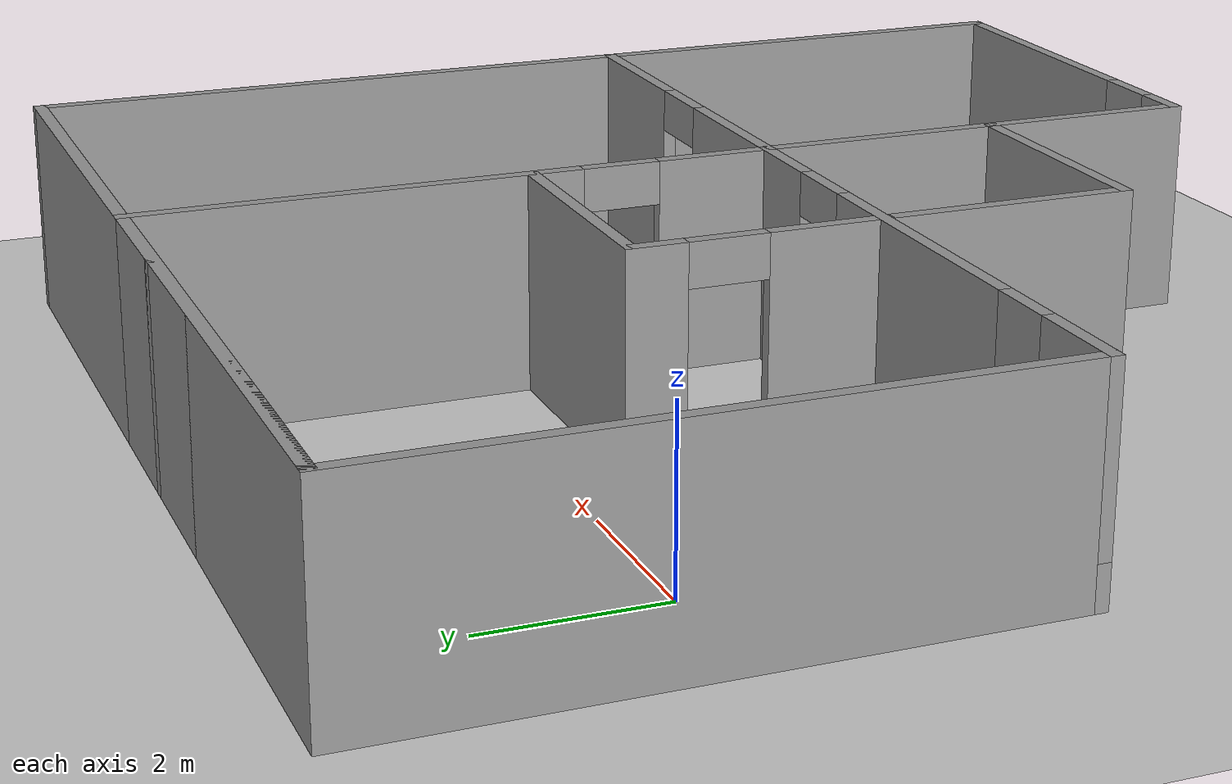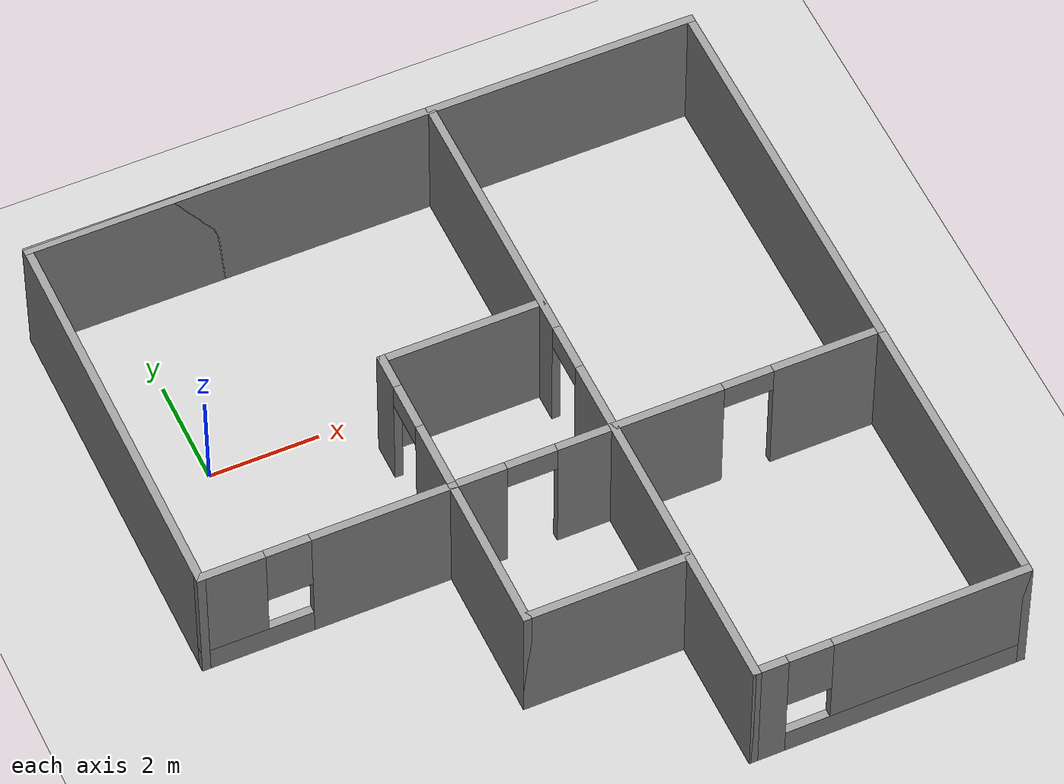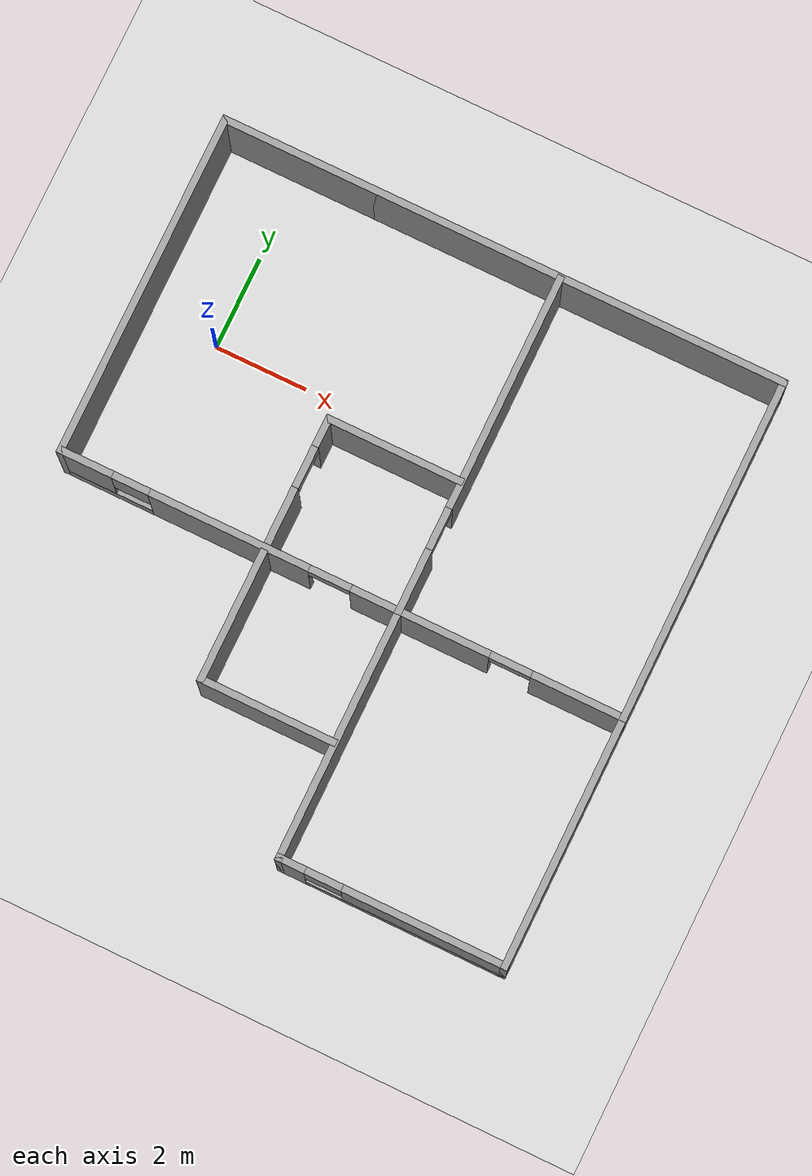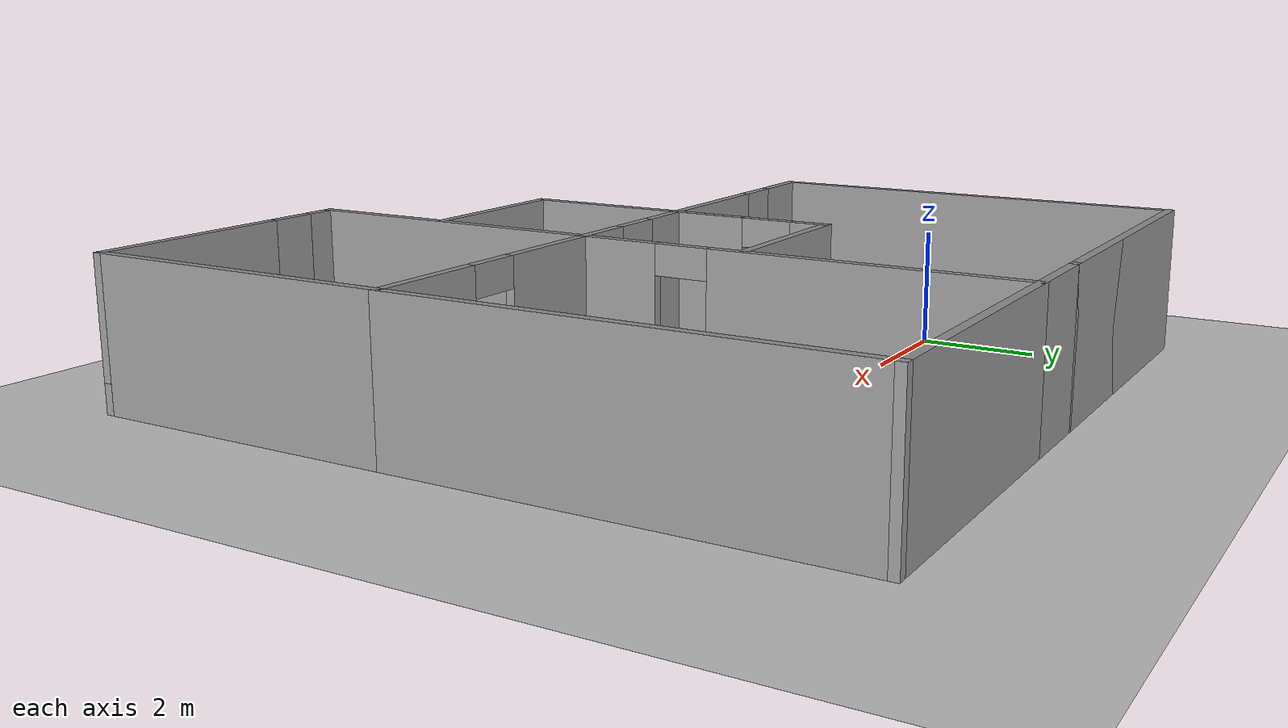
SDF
<sdf version="1.6">
 <world name="default">
  <model name="ground_plane">
   <static>1</static>
   <link name="link">
    <collision name="collision">
     <geometry><plane><normal>0 0 1</normal><size>100 100</size></plane></geometry>
     <surface>
      <contact><collide_bitmask>65535</collide_bitmask></contact>
      <friction><ode><mu>100</mu><mu2>50</mu2></ode></friction>
     </surface>
    </collision>
    <visual name="visual">
     <cast_shadows>0</cast_shadows>
     <geometry><plane><normal>0 0 1</normal><size>100 100</size></plane></geometry>
     <material>
      <script><uri>file://media/materials/scripts/gazebo.material</uri><name>Gazebo/Grey</name></script>
     </material>
    </visual>
   </link>
  </model>
  <model name="HouseIslam_0">
   <pose>4.53455 -2.52529 0 0 -0 0</pose>
   <link name="Wall_11">
    <collision name="Wall_11_Collision">
     <geometry><box><size>7.5 0.15 2.5</size></box></geometry>
     <pose>0 0 1.25 0 -0 0</pose>
    </collision>
    <visual name="Wall_11_Visual">
     <pose>0 0 1.25 0 -0 0</pose>
     <geometry><box><size>7.5 0.15 2.5</size></box></geometry>
     <material>
      <script><uri>file://media/materials/scripts/gazebo.material</uri><name>Gazebo/Grey</name></script>
      <ambient>1 1 1 1</ambient>
     </material>
     <meta><layer>0</layer></meta>
    </visual>
    <pose>-6.1 2.675 0 0 -0 1.5708</pose>
   </link>
   <link name="Wall_13">
    <pose>3.675 -1 0 0 -0 0</pose>
    <visual name="Wall_13_Visual_0">
     <pose>-1.4775 0 1.25 0 -0 0</pose>
     <geometry><box><size>2.045 0.15 2.5</size></box></geometry>
     <material>
      <script><uri>file://media/materials/scripts/gazebo.material</uri><name>Gazebo/Grey</name></script>
      <ambient>1 1 1 1</ambient>
     </material>
     <meta><layer>0</layer></meta>
    </visual>
    <collision name="Wall_13_Collision_0">
     <geometry><box><size>2.045 0.15 2.5</size></box></geometry>
     <pose>-1.4775 0 1.25 0 -0 0</pose>
    </collision>
    <visual name="Wall_13_Visual_1">
     <pose>1.4725 0 1.25 0 -0 0</pose>
     <geometry><box><size>2.055 0.15 2.5</size></box></geometry>
     <material>
      <script><uri>file://media/materials/scripts/gazebo.material</uri><name>Gazebo/Grey</name></script>
      <ambient>1 1 1 1</ambient>
     </material>
     <meta><layer>0</layer></meta>
    </visual>
    <collision name="Wall_13_Collision_1">
     <geometry><box><size>2.055 0.15 2.5</size></box></geometry>
     <pose>1.4725 0 1.25 0 -0 0</pose>
    </collision>
    <visual name="Wall_13_Visual_2">
     <pose>-0.005 0 2.25 0 -0 0</pose>
     <geometry><box><size>0.9 0.15 0.5</size></box></geometry>
     <material>
      <script><uri>file://media/materials/scripts/gazebo.material</uri><name>Gazebo/Grey</name></script>
      <ambient>1 1 1 1</ambient>
     </material>
     <meta><layer>0</layer></meta>
    </visual>
    <collision name="Wall_13_Collision_2">
     <geometry><box><size>0.9 0.15 0.5</size></box></geometry>
     <pose>-0.005 0 2.25 0 -0 0</pose>
    </collision>
   </link>
   <link name="Wall_15">
    <collision name="Wall_15_Collision">
     <geometry><box><size>7.5 0.15 2.5</size></box></geometry>
     <pose>0 0 1.25 0 -0 0</pose>
    </collision>
    <visual name="Wall_15_Visual">
     <pose>0 0 1.25 0 -0 0</pose>
     <geometry><box><size>7.5 0.15 2.5</size></box></geometry>
     <material>
      <script><uri>file://media/materials/scripts/gazebo.material</uri><name>Gazebo/Grey</name></script>
      <ambient>1 1 1 1</ambient>
     </material>
     <meta><layer>0</layer></meta>
    </visual>
    <pose>6.1 2.675 0 0 -0 1.5708</pose>
   </link>
   <link name="Wall_17">
    <collision name="Wall_17_Collision">
     <geometry><box><size>5 0.15 2.5</size></box></geometry>
     <pose>0 0 1.25 0 -0 0</pose>
    </collision>
    <visual name="Wall_17_Visual">
     <pose>0 0 1.25 0 -0 0</pose>
     <geometry><box><size>5 0.15 2.5</size></box></geometry>
     <material>
      <script><uri>file://media/materials/scripts/gazebo.material</uri><name>Gazebo/Grey</name></script>
      <ambient>1 1 1 1</ambient>
     </material>
     <meta><layer>0</layer></meta>
    </visual>
    <pose>3.675 6.35 0 0 -0 3.14159</pose>
   </link>
   <link name="Wall_19">
    <collision name="Wall_19_Collision">
     <geometry><box><size>5.5 0.15 2.5</size></box></geometry>
     <pose>0 0 1.25 0 -0 0</pose>
    </collision>
    <visual name="Wall_19_Visual">
     <pose>0 0 1.25 0 -0 0</pose>
     <geometry><box><size>5.5 0.15 2.5</size></box></geometry>
     <material>
      <script><uri>file://media/materials/scripts/gazebo.material</uri><name>Gazebo/Grey</name></script>
      <ambient>1 1 1 1</ambient>
     </material>
     <meta><layer>0</layer></meta>
    </visual>
    <pose>1.25 -3.675 0 0 -0 -1.5708</pose>
   </link>
   <link name="Wall_21">
    <collision name="Wall_21_Collision">
     <geometry><box><size>5.5 0.15 2.5</size></box></geometry>
     <pose>0 0 1.25 0 -0 0</pose>
    </collision>
    <visual name="Wall_21_Visual">
     <pose>0 0 1.25 0 -0 0</pose>
     <geometry><box><size>5.5 0.15 2.5</size></box></geometry>
     <material>
      <script><uri>file://media/materials/scripts/gazebo.material</uri><name>Gazebo/Grey</name></script>
      <ambient>1 1 1 1</ambient>
     </material>
     <meta><layer>0</layer></meta>
    </visual>
    <pose>6.1 -3.675 0 0 -0 -1.5708</pose>
   </link>
   <link name="Wall_23">
    <pose>3.675 -6.35 0 0 -0 0</pose>
    <visual name="Wall_23_Visual_0">
     <pose>-2.1825 0 1.25 0 -0 0</pose>
     <geometry><box><size>0.635 0.15 2.5</size></box></geometry>
     <material>
      <script><uri>file://media/materials/scripts/gazebo.material</uri><name>Gazebo/Grey</name></script>
      <ambient>1 1 1 1</ambient>
     </material>
     <meta><layer>0</layer></meta>
    </visual>
    <collision name="Wall_23_Collision_0">
     <geometry><box><size>0.635 0.15 2.5</size></box></geometry>
     <pose>-2.1825 0 1.25 0 -0 0</pose>
    </collision>
    <visual name="Wall_23_Visual_1">
     <pose>0.3175 0 0.25 0 -0 0</pose>
     <geometry><box><size>4.365 0.15 0.5</size></box></geometry>
     <material>
      <script><uri>file://media/materials/scripts/gazebo.material</uri><name>Gazebo/Grey</name></script>
      <ambient>1 1 1 1</ambient>
     </material>
     <meta><layer>0</layer></meta>
    </visual>
    <collision name="Wall_23_Collision_1">
     <geometry><box><size>4.365 0.15 0.5</size></box></geometry>
     <pose>0.3175 0 0.25 0 -0 0</pose>
    </collision>
    <visual name="Wall_23_Visual_2">
     <pose>0.7175 0 1.5 0 -0 0</pose>
     <geometry><box><size>3.565 0.15 2</size></box></geometry>
     <material>
      <script><uri>file://media/materials/scripts/gazebo.material</uri><name>Gazebo/Grey</name></script>
      <ambient>1 1 1 1</ambient>
     </material>
     <meta><layer>0</layer></meta>
    </visual>
    <collision name="Wall_23_Collision_2">
     <geometry><box><size>3.565 0.15 2</size></box></geometry>
     <pose>0.7175 0 1.5 0 -0 0</pose>
    </collision>
    <visual name="Wall_23_Visual_3">
     <pose>-1.465 0 1.9 0 -0 0</pose>
     <geometry><box><size>0.8 0.15 1.2</size></box></geometry>
     <material>
      <script><uri>file://media/materials/scripts/gazebo.material</uri><name>Gazebo/Grey</name></script>
      <ambient>1 1 1 1</ambient>
     </material>
     <meta><layer>0</layer></meta>
    </visual>
    <collision name="Wall_23_Collision_3">
     <geometry><box><size>0.8 0.15 1.2</size></box></geometry>
     <pose>-1.465 0 1.9 0 -0 0</pose>
    </collision>
   </link>
   <link name="Wall_28">
    <pose>-1.64 0.404999 0 0 -0 1.5708</pose>
    <visual name="Wall_28_Visual_0">
     <pose>-0.7925 0 1.25 0 -0 0</pose>
     <geometry><box><size>1.415 0.15 2.5</size></box></geometry>
     <material>
      <script><uri>file://media/materials/scripts/gazebo.material</uri><name>Gazebo/Grey</name></script>
      <ambient>1 1 1 1</ambient>
     </material>
     <meta><layer>0</layer></meta>
    </visual>
    <collision name="Wall_28_Collision_0">
     <geometry><box><size>1.415 0.15 2.5</size></box></geometry>
     <pose>-0.7925 0 1.25 0 -0 0</pose>
    </collision>
    <visual name="Wall_28_Visual_1">
     <pose>1.1575 0 1.25 0 -0 0</pose>
     <geometry><box><size>0.685 0.15 2.5</size></box></geometry>
     <material>
      <script><uri>file://media/materials/scripts/gazebo.material</uri><name>Gazebo/Grey</name></script>
      <ambient>1 1 1 1</ambient>
     </material>
     <meta><layer>0</layer></meta>
    </visual>
    <collision name="Wall_28_Collision_1">
     <geometry><box><size>0.685 0.15 2.5</size></box></geometry>
     <pose>1.1575 0 1.25 0 -0 0</pose>
    </collision>
    <visual name="Wall_28_Visual_2">
     <pose>0.365 0 2.25 0 -0 0</pose>
     <geometry><box><size>0.9 0.15 0.5</size></box></geometry>
     <material>
      <script><uri>file://media/materials/scripts/gazebo.material</uri><name>Gazebo/Grey</name></script>
      <ambient>1 1 1 1</ambient>
     </material>
     <meta><layer>0</layer></meta>
    </visual>
    <collision name="Wall_28_Collision_2">
     <geometry><box><size>0.9 0.15 0.5</size></box></geometry>
     <pose>0.365 0 2.25 0 -0 0</pose>
    </collision>
   </link>
   <link name="Wall_3">
    <collision name="Wall_3_Collision">
     <geometry><box><size>7.5 0.15 2.5</size></box></geometry>
     <pose>0 0 1.25 0 -0 0</pose>
    </collision>
    <visual name="Wall_3_Visual">
     <pose>0 0 1.25 0 -0 0</pose>
     <geometry><box><size>7.5 0.15 2.5</size></box></geometry>
     <material>
      <script><uri>file://media/materials/scripts/gazebo.material</uri><name>Gazebo/Grey</name></script>
      <ambient>1 1 1 1</ambient>
     </material>
     <meta><layer>0</layer></meta>
    </visual>
    <pose>-2.425 6.35 0 0 -0 3.14159</pose>
   </link>
   <link name="Wall_30">
    <collision name="Wall_30_Collision">
     <geometry><box><size>3 0.15 2.5</size></box></geometry>
     <pose>0 0 1.25 0 -0 0</pose>
    </collision>
    <visual name="Wall_30_Visual">
     <pose>0 0 1.25 0 -0 0</pose>
     <geometry><box><size>3 0.15 2.5</size></box></geometry>
     <material>
      <script><uri>file://media/materials/scripts/gazebo.material</uri><name>Gazebo/Grey</name></script>
      <ambient>1 1 1 1</ambient>
     </material>
     <meta><layer>0</layer></meta>
    </visual>
    <pose>-0.215 1.83 0 0 -0 0</pose>
   </link>
   <link name="Wall_32">
    <collision name="Wall_32_Collision">
     <geometry><box><size>3 0.15 2.5</size></box></geometry>
     <pose>0 0 1.25 0 -0 0</pose>
    </collision>
    <visual name="Wall_32_Visual">
     <pose>0 0 1.25 0 -0 0</pose>
     <geometry><box><size>3 0.15 2.5</size></box></geometry>
     <material>
      <script><uri>file://media/materials/scripts/gazebo.material</uri><name>Gazebo/Grey</name></script>
      <ambient>1 1 1 1</ambient>
     </material>
     <meta><layer>0</layer></meta>
    </visual>
    <pose>-1.64 -2.445 0 0 -0 -1.5708</pose>
   </link>
   <link name="Wall_33">
    <collision name="Wall_33_Collision">
     <geometry><box><size>3 0.15 2.5</size></box></geometry>
     <pose>0 0 1.25 0 -0 0</pose>
    </collision>
    <visual name="Wall_33_Visual">
     <pose>0 0 1.25 0 -0 0</pose>
     <geometry><box><size>3 0.15 2.5</size></box></geometry>
     <material>
      <script><uri>file://media/materials/scripts/gazebo.material</uri><name>Gazebo/Grey</name></script>
      <ambient>1 1 1 1</ambient>
     </material>
     <meta><layer>0</layer></meta>
    </visual>
    <pose>-0.215 -3.87 0 0 -0 0</pose>
   </link>
   <link name="Wall_4">
    <collision name="Wall_4_Collision">
     <geometry><box><size>5.91 0.15 2.5</size></box></geometry>
     <pose>0 0 1.25 0 -0 0</pose>
    </collision>
    <visual name="Wall_4_Visual">
     <pose>0 0 1.25 0 -0 0</pose>
     <geometry><box><size>5.91 0.15 2.5</size></box></geometry>
     <material>
      <script><uri>file://media/materials/scripts/gazebo.material</uri><name>Gazebo/Grey</name></script>
      <ambient>1 1 1 1</ambient>
     </material>
     <meta><layer>0</layer></meta>
    </visual>
    <pose>-3.22 6.35 0 0 -0 0</pose>
   </link>
   <link name="Wall_5">
    <collision name="Wall_5_Collision">
     <geometry><box><size>0.16 0.15 2.5</size></box></geometry>
     <pose>0 0 1.25 0 -0 0</pose>
    </collision>
    <visual name="Wall_5_Visual">
     <pose>0 0 1.25 0 -0 0</pose>
     <geometry><box><size>0.16 0.15 2.5</size></box></geometry>
     <material>
      <script><uri>file://media/materials/scripts/gazebo.material</uri><name>Gazebo/Grey</name></script>
      <ambient>1 1 1 1</ambient>
     </material>
     <meta><layer>0</layer></meta>
    </visual>
    <pose>-0.335 6.35 0 0 -0 0</pose>
   </link>
   <link name="Wall_7">
    <pose>1.25 2.675 0 0 -0 -1.5708</pose>
    <visual name="Wall_7_Visual_0">
     <pose>-1.1625 0 1.25 0 -0 0</pose>
     <geometry><box><size>5.175 0.15 2.5</size></box></geometry>
     <material>
      <script><uri>file://media/materials/scripts/gazebo.material</uri><name>Gazebo/Grey</name></script>
      <ambient>1 1 1 1</ambient>
     </material>
     <meta><layer>0</layer></meta>
    </visual>
    <collision name="Wall_7_Collision_0">
     <geometry><box><size>5.175 0.15 2.5</size></box></geometry>
     <pose>-1.1625 0 1.25 0 -0 0</pose>
    </collision>
    <visual name="Wall_7_Visual_1">
     <pose>3.0375 0 1.25 0 -0 0</pose>
     <geometry><box><size>1.425 0.15 2.5</size></box></geometry>
     <material>
      <script><uri>file://media/materials/scripts/gazebo.material</uri><name>Gazebo/Grey</name></script>
      <ambient>1 1 1 1</ambient>
     </material>
     <meta><layer>0</layer></meta>
    </visual>
    <collision name="Wall_7_Collision_1">
     <geometry><box><size>1.425 0.15 2.5</size></box></geometry>
     <pose>3.0375 0 1.25 0 -0 0</pose>
    </collision>
    <visual name="Wall_7_Visual_2">
     <pose>1.875 0 2.25 0 -0 0</pose>
     <geometry><box><size>0.9 0.15 0.5</size></box></geometry>
     <material>
      <script><uri>file://media/materials/scripts/gazebo.material</uri><name>Gazebo/Grey</name></script>
      <ambient>1 1 1 1</ambient>
     </material>
     <meta><layer>0</layer></meta>
    </visual>
    <collision name="Wall_7_Collision_2">
     <geometry><box><size>0.9 0.15 0.5</size></box></geometry>
     <pose>1.875 0 2.25 0 -0 0</pose>
    </collision>
   </link>
   <link name="Wall_9">
    <pose>-2.425 -1 0 0 -0 3.14159</pose>
    <visual name="Wall_9_Visual_0">
     <pose>-3.1925 0 1.25 0 -0 0</pose>
     <geometry><box><size>1.115 0.15 2.5</size></box></geometry>
     <material>
      <script><uri>file://media/materials/scripts/gazebo.material</uri><name>Gazebo/Grey</name></script>
      <ambient>1 1 1 1</ambient>
     </material>
     <meta><layer>0</layer></meta>
    </visual>
    <collision name="Wall_9_Collision_0">
     <geometry><box><size>1.115 0.15 2.5</size></box></geometry>
     <pose>-3.1925 0 1.25 0 -0 0</pose>
    </collision>
    <visual name="Wall_9_Visual_1">
     <pose>0.005 0 1.25 0 -0 0</pose>
     <geometry><box><size>3.48 0.15 2.5</size></box></geometry>
     <material>
      <script><uri>file://media/materials/scripts/gazebo.material</uri><name>Gazebo/Grey</name></script>
      <ambient>1 1 1 1</ambient>
     </material>
     <meta><layer>0</layer></meta>
    </visual>
    <collision name="Wall_9_Collision_1">
     <geometry><box><size>3.48 0.15 2.5</size></box></geometry>
     <pose>0.005 0 1.25 0 -0 0</pose>
    </collision>
    <visual name="Wall_9_Visual_2">
     <pose>2.7475 0 0.25 0 -0 0</pose>
     <geometry><box><size>2.005 0.15 0.5</size></box></geometry>
     <material>
      <script><uri>file://media/materials/scripts/gazebo.material</uri><name>Gazebo/Grey</name></script>
      <ambient>1 1 1 1</ambient>
     </material>
     <meta><layer>0</layer></meta>
    </visual>
    <collision name="Wall_9_Collision_2">
     <geometry><box><size>2.005 0.15 0.5</size></box></geometry>
     <pose>2.7475 0 0.25 0 -0 0</pose>
    </collision>
    <visual name="Wall_9_Visual_3">
     <pose>3.1475 0 1.5 0 -0 0</pose>
     <geometry><box><size>1.205 0.15 2</size></box></geometry>
     <material>
      <script><uri>file://media/materials/scripts/gazebo.material</uri><name>Gazebo/Grey</name></script>
      <ambient>1 1 1 1</ambient>
     </material>
     <meta><layer>0</layer></meta>
    </visual>
    <collision name="Wall_9_Collision_3">
     <geometry><box><size>1.205 0.15 2</size></box></geometry>
     <pose>3.1475 0 1.5 0 -0 0</pose>
    </collision>
    <visual name="Wall_9_Visual_4">
     <pose>2.145 0 1.9 0 -0 0</pose>
     <geometry><box><size>0.8 0.15 1.2</size></box></geometry>
     <material>
      <script><uri>file://media/materials/scripts/gazebo.material</uri><name>Gazebo/Grey</name></script>
      <ambient>1 1 1 1</ambient>
     </material>
     <meta><layer>0</layer></meta>
    </visual>
    <collision name="Wall_9_Collision_4">
     <geometry><box><size>0.8 0.15 1.2</size></box></geometry>
     <pose>2.145 0 1.9 0 -0 0</pose>
    </collision>
    <visual name="Wall_9_Visual_5">
     <pose>-2.185 0 2.25 0 -0 0</pose>
     <geometry><box><size>0.9 0.15 0.5</size></box></geometry>
     <material>
      <script><uri>file://media/materials/scripts/gazebo.material</uri><name>Gazebo/Grey</name></script>
      <ambient>1 1 1 1</ambient>
     </material>
     <meta><layer>0</layer></meta>
    </visual>
    <collision name="Wall_9_Collision_5">
     <geometry><box><size>0.9 0.15 0.5</size></box></geometry>
     <pose>-2.185 0 2.25 0 -0 0</pose>
    </collision>
   </link>
   <static>1</static>
  </model>
 </world>
</sdf>
